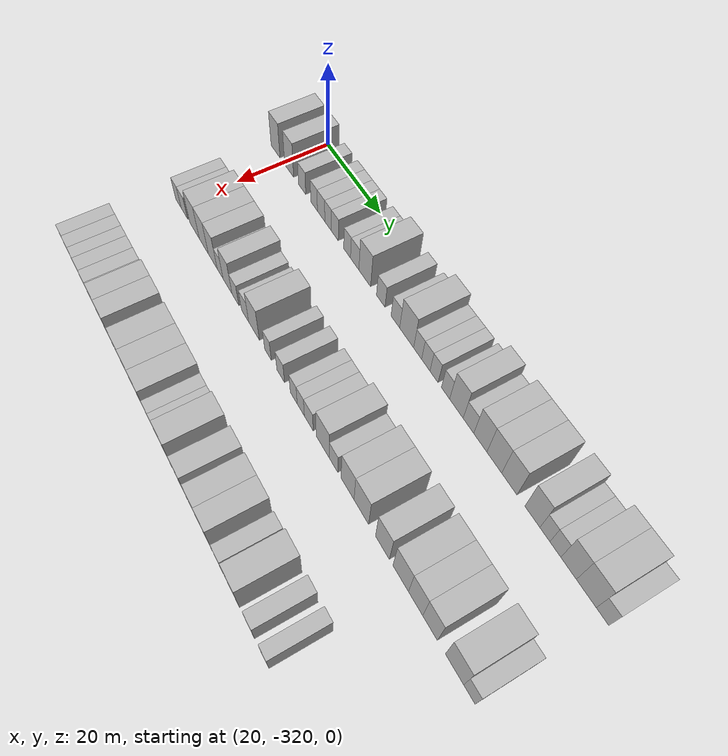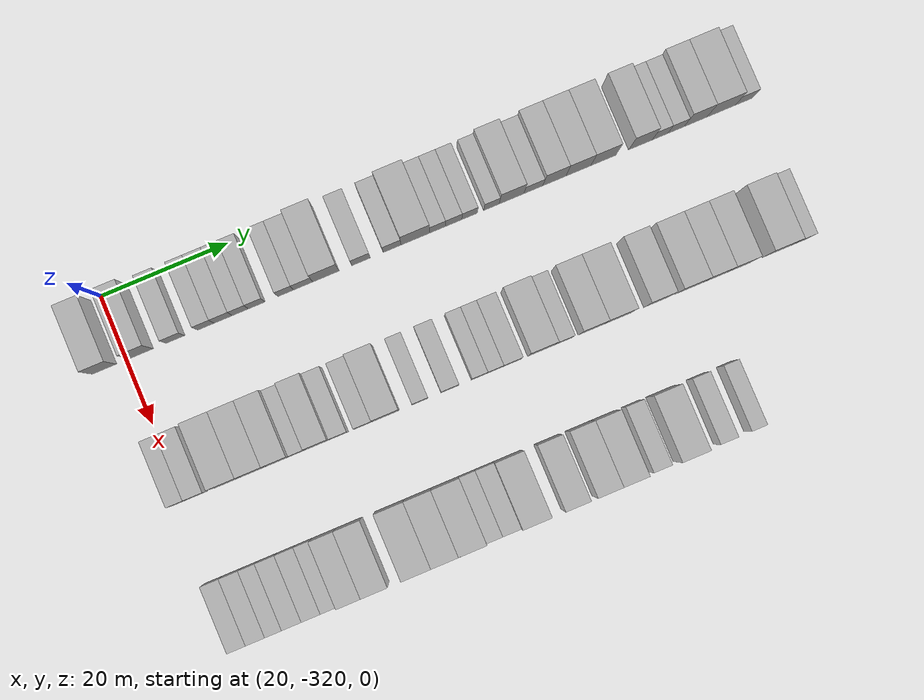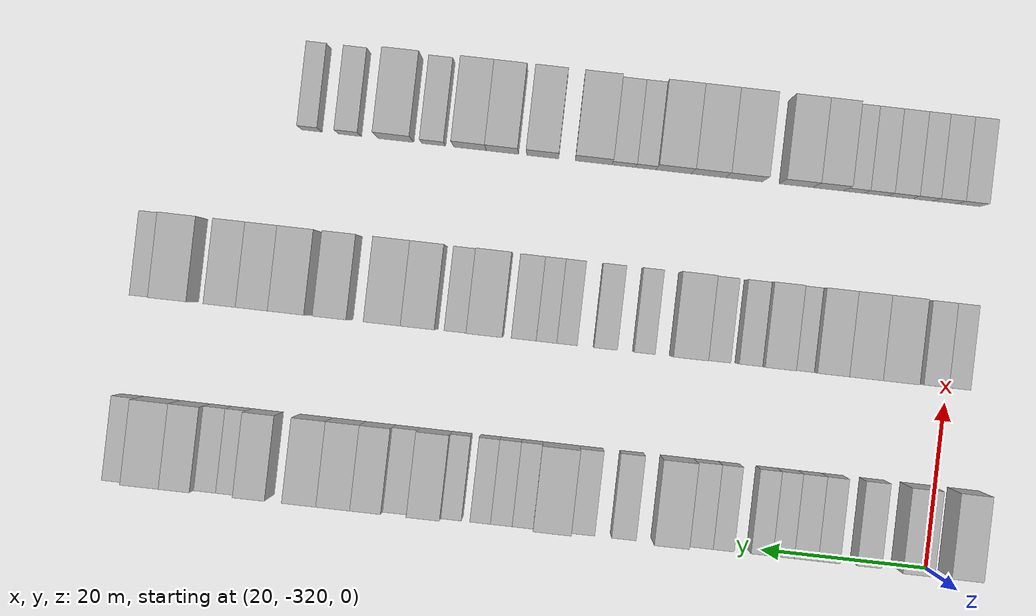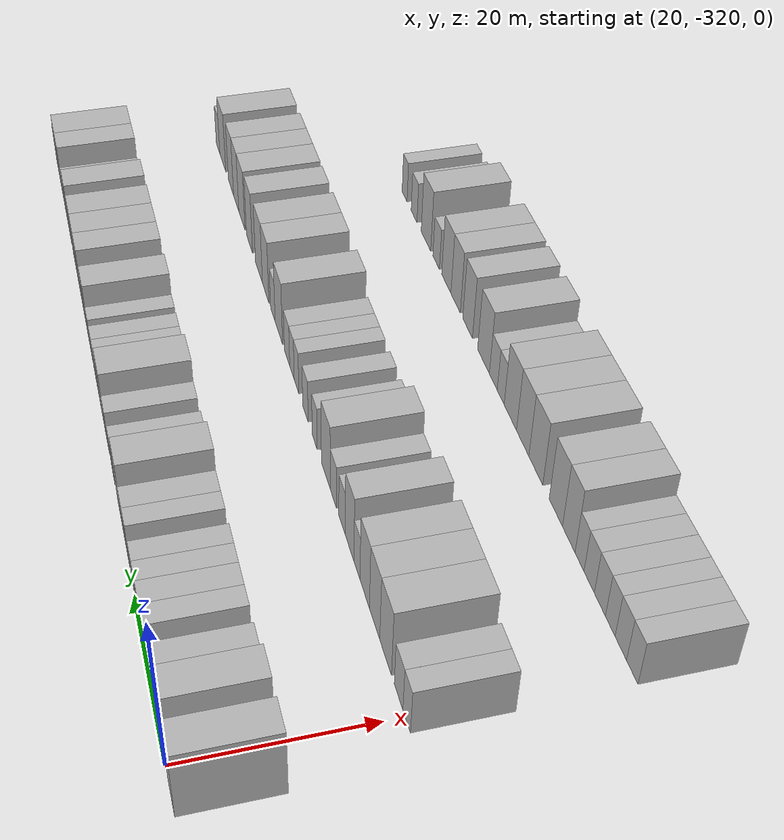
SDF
<sdf version="1.6">
 <world name="default">
  <model name="building_8">
   <static>1</static>
   <pose>25.0000 -323.3611 0 0.000000 0.000000 0.000000</pose>
   <link name="link">
    <pose>0 0 4.50 0 0 0</pose>
    <collision name="collision"><geometry><box><size>10.0000 3.7822 9.0000</size></box></geometry></collision>
    <visual name="visual">
     <cast_shadows>0</cast_shadows>
     <geometry><box><size>10.0000 3.7822 9.0000</size></box></geometry>
     <material>
      <script>
       <uri>model://HANNAS_wall/materials/scripts</uri>
       <uri>model://HANNAS_wall/materials/textures</uri>
       <name>vrc/HANNAS_wall</name>
      </script>
     </material>
    </visual>
   </link>
  </model>
  <model name="building_9">
   <static>1</static>
   <pose>25.0000 -317.6096 0 0.000000 0.000000 0.000000</pose>
   <link name="link">
    <pose>0 0 4.50 0 0 0</pose>
    <collision name="collision"><geometry><box><size>10.0000 3.7208 9.0000</size></box></geometry></collision>
    <visual name="visual">
     <cast_shadows>0</cast_shadows>
     <geometry><box><size>10.0000 3.7208 9.0000</size></box></geometry>
     <material>
      <script>
       <uri>model://HANNAS_wall/materials/scripts</uri>
       <uri>model://HANNAS_wall/materials/textures</uri>
       <name>vrc/HANNAS_wall</name>
      </script>
     </material>
    </visual>
   </link>
  </model>
  <model name="building_10">
   <static>1</static>
   <pose>25.0000 -312.2862 0 0.000000 0.000000 0.000000</pose>
   <link name="link">
    <pose>0 0 3.00 0 0 0</pose>
    <collision name="collision"><geometry><box><size>10.0000 2.9260 6.0000</size></box></geometry></collision>
    <visual name="visual">
     <cast_shadows>0</cast_shadows>
     <geometry><box><size>10.0000 2.9260 6.0000</size></box></geometry>
     <material>
      <script>
       <uri>model://HANNAS_wall/materials/scripts</uri>
       <uri>model://HANNAS_wall/materials/textures</uri>
       <name>vrc/HANNAS_wall</name>
      </script>
     </material>
    </visual>
   </link>
  </model>
  <model name="building_11">
   <static>1</static>
   <pose>25.0000 -307.5249 0 0.000000 0.000000 0.000000</pose>
   <link name="link">
    <pose>0 0 3.00 0 0 0</pose>
    <collision name="collision"><geometry><box><size>10.0000 2.5965 6.0000</size></box></geometry></collision>
    <visual name="visual">
     <cast_shadows>0</cast_shadows>
     <geometry><box><size>10.0000 2.5965 6.0000</size></box></geometry>
     <material>
      <script>
       <uri>model://HANNAS_wall/materials/scripts</uri>
       <uri>model://HANNAS_wall/materials/textures</uri>
       <name>vrc/HANNAS_wall</name>
      </script>
     </material>
    </visual>
   </link>
  </model>
  <model name="building_12">
   <static>1</static>
   <pose>25.0000 -304.8029 0 0.000000 0.000000 0.000000</pose>
   <link name="link">
    <pose>0 0 3.00 0 0 0</pose>
    <collision name="collision"><geometry><box><size>10.0000 2.8476 6.0000</size></box></geometry></collision>
    <visual name="visual">
     <cast_shadows>0</cast_shadows>
     <geometry><box><size>10.0000 2.8476 6.0000</size></box></geometry>
     <material>
      <script>
       <uri>model://HANNAS_wall/materials/scripts</uri>
       <uri>model://HANNAS_wall/materials/textures</uri>
       <name>vrc/HANNAS_wall</name>
      </script>
     </material>
    </visual>
   </link>
  </model>
  <model name="building_13">
   <static>1</static>
   <pose>25.0000 -302.1215 0 0.000000 0.000000 0.000000</pose>
   <link name="link">
    <pose>0 0 3.00 0 0 0</pose>
    <collision name="collision"><geometry><box><size>10.0000 2.5152 6.0000</size></box></geometry></collision>
    <visual name="visual">
     <cast_shadows>0</cast_shadows>
     <geometry><box><size>10.0000 2.5152 6.0000</size></box></geometry>
     <material>
      <script>
       <uri>model://HANNAS_wall/materials/scripts</uri>
       <uri>model://HANNAS_wall/materials/textures</uri>
       <name>vrc/HANNAS_wall</name>
      </script>
     </material>
    </visual>
   </link>
  </model>
  <model name="building_14">
   <static>1</static>
   <pose>25.0000 -299.5712 0 0.000000 0.000000 0.000000</pose>
   <link name="link">
    <pose>0 0 3.00 0 0 0</pose>
    <collision name="collision"><geometry><box><size>10.0000 2.5855 6.0000</size></box></geometry></collision>
    <visual name="visual">
     <cast_shadows>0</cast_shadows>
     <geometry><box><size>10.0000 2.5855 6.0000</size></box></geometry>
     <material>
      <script>
       <uri>model://HANNAS_wall/materials/scripts</uri>
       <uri>model://HANNAS_wall/materials/textures</uri>
       <name>vrc/HANNAS_wall</name>
      </script>
     </material>
    </visual>
   </link>
  </model>
  <model name="building_15">
   <static>1</static>
   <pose>25.0000 -295.0338 0 0.000000 0.000000 0.000000</pose>
   <link name="link">
    <pose>0 0 3.00 0 0 0</pose>
    <collision name="collision"><geometry><box><size>10.0000 2.4892 6.0000</size></box></geometry></collision>
    <visual name="visual">
     <cast_shadows>0</cast_shadows>
     <geometry><box><size>10.0000 2.4892 6.0000</size></box></geometry>
     <material>
      <script>
       <uri>model://HANNAS_wall/materials/scripts</uri>
       <uri>model://HANNAS_wall/materials/textures</uri>
       <name>vrc/HANNAS_wall</name>
      </script>
     </material>
    </visual>
   </link>
  </model>
  <model name="building_16">
   <static>1</static>
   <pose>25.0000 -292.2960 0 0.000000 0.000000 0.000000</pose>
   <link name="link">
    <pose>0 0 3.00 0 0 0</pose>
    <collision name="collision"><geometry><box><size>10.0000 2.9864 6.0000</size></box></geometry></collision>
    <visual name="visual">
     <cast_shadows>0</cast_shadows>
     <geometry><box><size>10.0000 2.9864 6.0000</size></box></geometry>
     <material>
      <script>
       <uri>model://HANNAS_wall/materials/scripts</uri>
       <uri>model://HANNAS_wall/materials/textures</uri>
       <name>vrc/HANNAS_wall</name>
      </script>
     </material>
    </visual>
   </link>
  </model>
  <model name="building_17">
   <static>1</static>
   <pose>25.0000 -288.7439 0 0.000000 0.000000 0.000000</pose>
   <link name="link">
    <pose>0 0 4.50 0 0 0</pose>
    <collision name="collision"><geometry><box><size>10.0000 4.1179 9.0000</size></box></geometry></collision>
    <visual name="visual">
     <cast_shadows>0</cast_shadows>
     <geometry><box><size>10.0000 4.1179 9.0000</size></box></geometry>
     <material>
      <script>
       <uri>model://HANNAS_wall/materials/scripts</uri>
       <uri>model://HANNAS_wall/materials/textures</uri>
       <name>vrc/HANNAS_wall</name>
      </script>
     </material>
    </visual>
   </link>
  </model>
  <model name="building_18">
   <static>1</static>
   <pose>25.0000 -283.2338 0 0.000000 0.000000 0.000000</pose>
   <link name="link">
    <pose>0 0 3.00 0 0 0</pose>
    <collision name="collision"><geometry><box><size>10.0000 2.9022 6.0000</size></box></geometry></collision>
    <visual name="visual">
     <cast_shadows>0</cast_shadows>
     <geometry><box><size>10.0000 2.9022 6.0000</size></box></geometry>
     <material>
      <script>
       <uri>model://HANNAS_wall/materials/scripts</uri>
       <uri>model://HANNAS_wall/materials/textures</uri>
       <name>vrc/HANNAS_wall</name>
      </script>
     </material>
    </visual>
   </link>
  </model>
  <model name="building_19">
   <static>1</static>
   <pose>25.0000 -278.3784 0 0.000000 0.000000 0.000000</pose>
   <link name="link">
    <pose>0 0 3.00 0 0 0</pose>
    <collision name="collision"><geometry><box><size>10.0000 2.8085 6.0000</size></box></geometry></collision>
    <visual name="visual">
     <cast_shadows>0</cast_shadows>
     <geometry><box><size>10.0000 2.8085 6.0000</size></box></geometry>
     <material>
      <script>
       <uri>model://HANNAS_wall/materials/scripts</uri>
       <uri>model://HANNAS_wall/materials/textures</uri>
       <name>vrc/HANNAS_wall</name>
      </script>
     </material>
    </visual>
   </link>
  </model>
  <model name="building_20">
   <static>1</static>
   <pose>25.0000 -274.7363 0 0.000000 0.000000 0.000000</pose>
   <link name="link">
    <pose>0 0 4.50 0 0 0</pose>
    <collision name="collision"><geometry><box><size>10.0000 4.4758 9.0000</size></box></geometry></collision>
    <visual name="visual">
     <cast_shadows>0</cast_shadows>
     <geometry><box><size>10.0000 4.4758 9.0000</size></box></geometry>
     <material>
      <script>
       <uri>model://HANNAS_wall/materials/scripts</uri>
       <uri>model://HANNAS_wall/materials/textures</uri>
       <name>vrc/HANNAS_wall</name>
      </script>
     </material>
    </visual>
   </link>
  </model>
  <model name="building_21">
   <static>1</static>
   <pose>25.0000 -271.2488 0 0.000000 0.000000 0.000000</pose>
   <link name="link">
    <pose>0 0 3.00 0 0 0</pose>
    <collision name="collision"><geometry><box><size>10.0000 2.4991 6.0000</size></box></geometry></collision>
    <visual name="visual">
     <cast_shadows>0</cast_shadows>
     <geometry><box><size>10.0000 2.4991 6.0000</size></box></geometry>
     <material>
      <script>
       <uri>model://HANNAS_wall/materials/scripts</uri>
       <uri>model://HANNAS_wall/materials/textures</uri>
       <name>vrc/HANNAS_wall</name>
      </script>
     </material>
    </visual>
   </link>
  </model>
  <model name="building_22">
   <static>1</static>
   <pose>25.0000 -268.7155 0 0.000000 0.000000 0.000000</pose>
   <link name="link">
    <pose>0 0 3.00 0 0 0</pose>
    <collision name="collision"><geometry><box><size>10.0000 2.5675 6.0000</size></box></geometry></collision>
    <visual name="visual">
     <cast_shadows>0</cast_shadows>
     <geometry><box><size>10.0000 2.5675 6.0000</size></box></geometry>
     <material>
      <script>
       <uri>model://HANNAS_wall/materials/scripts</uri>
       <uri>model://HANNAS_wall/materials/textures</uri>
       <name>vrc/HANNAS_wall</name>
      </script>
     </material>
    </visual>
   </link>
  </model>
  <model name="building_23">
   <static>1</static>
   <pose>25.0000 -266.2116 0 0.000000 0.000000 0.000000</pose>
   <link name="link">
    <pose>0 0 3.00 0 0 0</pose>
    <collision name="collision"><geometry><box><size>10.0000 2.4403 6.0000</size></box></geometry></collision>
    <visual name="visual">
     <cast_shadows>0</cast_shadows>
     <geometry><box><size>10.0000 2.4403 6.0000</size></box></geometry>
     <material>
      <script>
       <uri>model://HANNAS_wall/materials/scripts</uri>
       <uri>model://HANNAS_wall/materials/textures</uri>
       <name>vrc/HANNAS_wall</name>
      </script>
     </material>
    </visual>
   </link>
  </model>
  <model name="building_24">
   <static>1</static>
   <pose>25.0000 -262.7773 0 0.000000 0.000000 0.000000</pose>
   <link name="link">
    <pose>0 0 3.00 0 0 0</pose>
    <collision name="collision"><geometry><box><size>10.0000 2.4283 6.0000</size></box></geometry></collision>
    <visual name="visual">
     <cast_shadows>0</cast_shadows>
     <geometry><box><size>10.0000 2.4283 6.0000</size></box></geometry>
     <material>
      <script>
       <uri>model://HANNAS_wall/materials/scripts</uri>
       <uri>model://HANNAS_wall/materials/textures</uri>
       <name>vrc/HANNAS_wall</name>
      </script>
     </material>
    </visual>
   </link>
  </model>
  <model name="building_25">
   <static>1</static>
   <pose>25.0000 -259.6138 0 0.000000 0.000000 0.000000</pose>
   <link name="link">
    <pose>0 0 4.50 0 0 0</pose>
    <collision name="collision"><geometry><box><size>10.0000 3.8987 9.0000</size></box></geometry></collision>
    <visual name="visual">
     <cast_shadows>0</cast_shadows>
     <geometry><box><size>10.0000 3.8987 9.0000</size></box></geometry>
     <material>
      <script>
       <uri>model://HANNAS_wall/materials/scripts</uri>
       <uri>model://HANNAS_wall/materials/textures</uri>
       <name>vrc/HANNAS_wall</name>
      </script>
     </material>
    </visual>
   </link>
  </model>
  <model name="building_26">
   <static>1</static>
   <pose>25.0000 -256.1735 0 0.000000 0.000000 0.000000</pose>
   <link name="link">
    <pose>0 0 3.00 0 0 0</pose>
    <collision name="collision"><geometry><box><size>10.0000 2.9818 6.0000</size></box></geometry></collision>
    <visual name="visual">
     <cast_shadows>0</cast_shadows>
     <geometry><box><size>10.0000 2.9818 6.0000</size></box></geometry>
     <material>
      <script>
       <uri>model://HANNAS_wall/materials/scripts</uri>
       <uri>model://HANNAS_wall/materials/textures</uri>
       <name>vrc/HANNAS_wall</name>
      </script>
     </material>
    </visual>
   </link>
  </model>
  <model name="building_27">
   <static>1</static>
   <pose>25.0000 -252.8727 0 0.000000 0.000000 0.000000</pose>
   <link name="link">
    <pose>0 0 4.50 0 0 0</pose>
    <collision name="collision"><geometry><box><size>10.0000 3.6199 9.0000</size></box></geometry></collision>
    <visual name="visual">
     <cast_shadows>0</cast_shadows>
     <geometry><box><size>10.0000 3.6199 9.0000</size></box></geometry>
     <material>
      <script>
       <uri>model://HANNAS_wall/materials/scripts</uri>
       <uri>model://HANNAS_wall/materials/textures</uri>
       <name>vrc/HANNAS_wall</name>
      </script>
     </material>
    </visual>
   </link>
  </model>
  <model name="building_28">
   <static>1</static>
   <pose>25.0000 -249.0801 0 0.000000 0.000000 0.000000</pose>
   <link name="link">
    <pose>0 0 4.50 0 0 0</pose>
    <collision name="collision"><geometry><box><size>10.0000 3.9652 9.0000</size></box></geometry></collision>
    <visual name="visual">
     <cast_shadows>0</cast_shadows>
     <geometry><box><size>10.0000 3.9652 9.0000</size></box></geometry>
     <material>
      <script>
       <uri>model://HANNAS_wall/materials/scripts</uri>
       <uri>model://HANNAS_wall/materials/textures</uri>
       <name>vrc/HANNAS_wall</name>
      </script>
     </material>
    </visual>
   </link>
  </model>
  <model name="building_29">
   <static>1</static>
   <pose>25.0000 -245.0985 0 0.000000 0.000000 0.000000</pose>
   <link name="link">
    <pose>0 0 4.50 0 0 0</pose>
    <collision name="collision"><geometry><box><size>10.0000 3.9980 9.0000</size></box></geometry></collision>
    <visual name="visual">
     <cast_shadows>0</cast_shadows>
     <geometry><box><size>10.0000 3.9980 9.0000</size></box></geometry>
     <material>
      <script>
       <uri>model://HANNAS_wall/materials/scripts</uri>
       <uri>model://HANNAS_wall/materials/textures</uri>
       <name>vrc/HANNAS_wall</name>
      </script>
     </material>
    </visual>
   </link>
  </model>
  <model name="building_30">
   <static>1</static>
   <pose>25.0000 -239.2274 0 0.000000 0.000000 0.000000</pose>
   <link name="link">
    <pose>0 0 4.50 0 0 0</pose>
    <collision name="collision"><geometry><box><size>10.0000 3.7443 9.0000</size></box></geometry></collision>
    <visual name="visual">
     <cast_shadows>0</cast_shadows>
     <geometry><box><size>10.0000 3.7443 9.0000</size></box></geometry>
     <material>
      <script>
       <uri>model://HANNAS_wall/materials/scripts</uri>
       <uri>model://HANNAS_wall/materials/textures</uri>
       <name>vrc/HANNAS_wall</name>
      </script>
     </material>
    </visual>
   </link>
  </model>
  <model name="building_31">
   <static>1</static>
   <pose>25.0000 -236.1387 0 0.000000 0.000000 0.000000</pose>
   <link name="link">
    <pose>0 0 3.00 0 0 0</pose>
    <collision name="collision"><geometry><box><size>10.0000 2.4332 6.0000</size></box></geometry></collision>
    <visual name="visual">
     <cast_shadows>0</cast_shadows>
     <geometry><box><size>10.0000 2.4332 6.0000</size></box></geometry>
     <material>
      <script>
       <uri>model://HANNAS_wall/materials/scripts</uri>
       <uri>model://HANNAS_wall/materials/textures</uri>
       <name>vrc/HANNAS_wall</name>
      </script>
     </material>
    </visual>
   </link>
  </model>
  <model name="building_32">
   <static>1</static>
   <pose>25.0000 -233.6231 0 0.000000 0.000000 0.000000</pose>
   <link name="link">
    <pose>0 0 3.00 0 0 0</pose>
    <collision name="collision"><geometry><box><size>10.0000 2.5980 6.0000</size></box></geometry></collision>
    <visual name="visual">
     <cast_shadows>0</cast_shadows>
     <geometry><box><size>10.0000 2.5980 6.0000</size></box></geometry>
     <material>
      <script>
       <uri>model://HANNAS_wall/materials/scripts</uri>
       <uri>model://HANNAS_wall/materials/textures</uri>
       <name>vrc/HANNAS_wall</name>
      </script>
     </material>
    </visual>
   </link>
  </model>
  <model name="building_33">
   <static>1</static>
   <pose>25.0000 -230.5094 0 0.000000 0.000000 0.000000</pose>
   <link name="link">
    <pose>0 0 4.50 0 0 0</pose>
    <collision name="collision"><geometry><box><size>10.0000 3.6295 9.0000</size></box></geometry></collision>
    <visual name="visual">
     <cast_shadows>0</cast_shadows>
     <geometry><box><size>10.0000 3.6295 9.0000</size></box></geometry>
     <material>
      <script>
       <uri>model://HANNAS_wall/materials/scripts</uri>
       <uri>model://HANNAS_wall/materials/textures</uri>
       <name>vrc/HANNAS_wall</name>
      </script>
     </material>
    </visual>
   </link>
  </model>
  <model name="building_34">
   <static>1</static>
   <pose>25.0000 -226.4478 0 0.000000 0.000000 0.000000</pose>
   <link name="link">
    <pose>0 0 4.50 0 0 0</pose>
    <collision name="collision"><geometry><box><size>10.0000 4.4936 9.0000</size></box></geometry></collision>
    <visual name="visual">
     <cast_shadows>0</cast_shadows>
     <geometry><box><size>10.0000 4.4936 9.0000</size></box></geometry>
     <material>
      <script>
       <uri>model://HANNAS_wall/materials/scripts</uri>
       <uri>model://HANNAS_wall/materials/textures</uri>
       <name>vrc/HANNAS_wall</name>
      </script>
     </material>
    </visual>
   </link>
  </model>
  <model name="building_35">
   <static>1</static>
   <pose>25.0000 -222.8182 0 0.000000 0.000000 0.000000</pose>
   <link name="link">
    <pose>0 0 3.00 0 0 0</pose>
    <collision name="collision"><geometry><box><size>10.0000 2.7655 6.0000</size></box></geometry></collision>
    <visual name="visual">
     <cast_shadows>0</cast_shadows>
     <geometry><box><size>10.0000 2.7655 6.0000</size></box></geometry>
     <material>
      <script>
       <uri>model://HANNAS_wall/materials/scripts</uri>
       <uri>model://HANNAS_wall/materials/textures</uri>
       <name>vrc/HANNAS_wall</name>
      </script>
     </material>
    </visual>
   </link>
  </model>
  <model name="building_190">
   <static>1</static>
   <pose>47.0000 -320.4937 0 0.000000 0.000000 0.000000</pose>
   <link name="link">
    <pose>0 0 3.00 0 0 0</pose>
    <collision name="collision"><geometry><box><size>10.0000 2.5569 6.0000</size></box></geometry></collision>
    <visual name="visual">
     <cast_shadows>0</cast_shadows>
     <geometry><box><size>10.0000 2.5569 6.0000</size></box></geometry>
     <material>
      <script>
       <uri>model://HANNAS_wall/materials/scripts</uri>
       <uri>model://HANNAS_wall/materials/textures</uri>
       <name>vrc/HANNAS_wall</name>
      </script>
     </material>
    </visual>
   </link>
  </model>
  <model name="building_191">
   <static>1</static>
   <pose>47.0000 -317.7249 0 0.000000 0.000000 0.000000</pose>
   <link name="link">
    <pose>0 0 3.00 0 0 0</pose>
    <collision name="collision"><geometry><box><size>10.0000 2.9806 6.0000</size></box></geometry></collision>
    <visual name="visual">
     <cast_shadows>0</cast_shadows>
     <geometry><box><size>10.0000 2.9806 6.0000</size></box></geometry>
     <material>
      <script>
       <uri>model://HANNAS_wall/materials/scripts</uri>
       <uri>model://HANNAS_wall/materials/textures</uri>
       <name>vrc/HANNAS_wall</name>
      </script>
     </material>
    </visual>
   </link>
  </model>
  <model name="building_192">
   <static>1</static>
   <pose>47.0000 -313.0884 0 0.000000 0.000000 0.000000</pose>
   <link name="link">
    <pose>0 0 4.50 0 0 0</pose>
    <collision name="collision"><geometry><box><size>10.0000 4.2924 9.0000</size></box></geometry></collision>
    <visual name="visual">
     <cast_shadows>0</cast_shadows>
     <geometry><box><size>10.0000 4.2924 9.0000</size></box></geometry>
     <material>
      <script>
       <uri>model://HANNAS_wall/materials/scripts</uri>
       <uri>model://HANNAS_wall/materials/textures</uri>
       <name>vrc/HANNAS_wall</name>
      </script>
     </material>
    </visual>
   </link>
  </model>
  <model name="building_193">
   <static>1</static>
   <pose>47.0000 -308.9764 0 0.000000 0.000000 0.000000</pose>
   <link name="link">
    <pose>0 0 4.50 0 0 0</pose>
    <collision name="collision"><geometry><box><size>10.0000 3.9316 9.0000</size></box></geometry></collision>
    <visual name="visual">
     <cast_shadows>0</cast_shadows>
     <geometry><box><size>10.0000 3.9316 9.0000</size></box></geometry>
     <material>
      <script>
       <uri>model://HANNAS_wall/materials/scripts</uri>
       <uri>model://HANNAS_wall/materials/textures</uri>
       <name>vrc/HANNAS_wall</name>
      </script>
     </material>
    </visual>
   </link>
  </model>
  <model name="building_194">
   <static>1</static>
   <pose>47.0000 -305.1375 0 0.000000 0.000000 0.000000</pose>
   <link name="link">
    <pose>0 0 4.50 0 0 0</pose>
    <collision name="collision"><geometry><box><size>10.0000 3.7464 9.0000</size></box></geometry></collision>
    <visual name="visual">
     <cast_shadows>0</cast_shadows>
     <geometry><box><size>10.0000 3.7464 9.0000</size></box></geometry>
     <material>
      <script>
       <uri>model://HANNAS_wall/materials/scripts</uri>
       <uri>model://HANNAS_wall/materials/textures</uri>
       <name>vrc/HANNAS_wall</name>
      </script>
     </material>
    </visual>
   </link>
  </model>
  <model name="building_195">
   <static>1</static>
   <pose>47.0000 -302.0287 0 0.000000 0.000000 0.000000</pose>
   <link name="link">
    <pose>0 0 3.00 0 0 0</pose>
    <collision name="collision"><geometry><box><size>10.0000 2.4711 6.0000</size></box></geometry></collision>
    <visual name="visual">
     <cast_shadows>0</cast_shadows>
     <geometry><box><size>10.0000 2.4711 6.0000</size></box></geometry>
     <material>
      <script>
       <uri>model://HANNAS_wall/materials/scripts</uri>
       <uri>model://HANNAS_wall/materials/textures</uri>
       <name>vrc/HANNAS_wall</name>
      </script>
     </material>
    </visual>
   </link>
  </model>
  <model name="building_196">
   <static>1</static>
   <pose>47.0000 -298.9734 0 0.000000 0.000000 0.000000</pose>
   <link name="link">
    <pose>0 0 4.50 0 0 0</pose>
    <collision name="collision"><geometry><box><size>10.0000 3.6395 9.0000</size></box></geometry></collision>
    <visual name="visual">
     <cast_shadows>0</cast_shadows>
     <geometry><box><size>10.0000 3.6395 9.0000</size></box></geometry>
     <material>
      <script>
       <uri>model://HANNAS_wall/materials/scripts</uri>
       <uri>model://HANNAS_wall/materials/textures</uri>
       <name>vrc/HANNAS_wall</name>
      </script>
     </material>
    </visual>
   </link>
  </model>
  <model name="building_197">
   <static>1</static>
   <pose>47.0000 -295.7661 0 0.000000 0.000000 0.000000</pose>
   <link name="link">
    <pose>0 0 3.00 0 0 0</pose>
    <collision name="collision"><geometry><box><size>10.0000 2.7751 6.0000</size></box></geometry></collision>
    <visual name="visual">
     <cast_shadows>0</cast_shadows>
     <geometry><box><size>10.0000 2.7751 6.0000</size></box></geometry>
     <material>
      <script>
       <uri>model://HANNAS_wall/materials/scripts</uri>
       <uri>model://HANNAS_wall/materials/textures</uri>
       <name>vrc/HANNAS_wall</name>
      </script>
     </material>
    </visual>
   </link>
  </model>
  <model name="building_198">
   <static>1</static>
   <pose>47.0000 -291.9570 0 0.000000 0.000000 0.000000</pose>
   <link name="link">
    <pose>0 0 3.00 0 0 0</pose>
    <collision name="collision"><geometry><box><size>10.0000 2.8432 6.0000</size></box></geometry></collision>
    <visual name="visual">
     <cast_shadows>0</cast_shadows>
     <geometry><box><size>10.0000 2.8432 6.0000</size></box></geometry>
     <material>
      <script>
       <uri>model://HANNAS_wall/materials/scripts</uri>
       <uri>model://HANNAS_wall/materials/textures</uri>
       <name>vrc/HANNAS_wall</name>
      </script>
     </material>
    </visual>
   </link>
  </model>
  <model name="building_199">
   <static>1</static>
   <pose>47.0000 -288.4844 0 0.000000 0.000000 0.000000</pose>
   <link name="link">
    <pose>0 0 4.50 0 0 0</pose>
    <collision name="collision"><geometry><box><size>10.0000 4.1020 9.0000</size></box></geometry></collision>
    <visual name="visual">
     <cast_shadows>0</cast_shadows>
     <geometry><box><size>10.0000 4.1020 9.0000</size></box></geometry>
     <material>
      <script>
       <uri>model://HANNAS_wall/materials/scripts</uri>
       <uri>model://HANNAS_wall/materials/textures</uri>
       <name>vrc/HANNAS_wall</name>
      </script>
     </material>
    </visual>
   </link>
  </model>
  <model name="building_200">
   <static>1</static>
   <pose>47.0000 -283.2029 0 0.000000 0.000000 0.000000</pose>
   <link name="link">
    <pose>0 0 3.00 0 0 0</pose>
    <collision name="collision"><geometry><box><size>10.0000 2.4610 6.0000</size></box></geometry></collision>
    <visual name="visual">
     <cast_shadows>0</cast_shadows>
     <geometry><box><size>10.0000 2.4610 6.0000</size></box></geometry>
     <material>
      <script>
       <uri>model://HANNAS_wall/materials/scripts</uri>
       <uri>model://HANNAS_wall/materials/textures</uri>
       <name>vrc/HANNAS_wall</name>
      </script>
     </material>
    </visual>
   </link>
  </model>
  <model name="building_201">
   <static>1</static>
   <pose>47.0000 -278.5942 0 0.000000 0.000000 0.000000</pose>
   <link name="link">
    <pose>0 0 3.00 0 0 0</pose>
    <collision name="collision"><geometry><box><size>10.0000 2.7563 6.0000</size></box></geometry></collision>
    <visual name="visual">
     <cast_shadows>0</cast_shadows>
     <geometry><box><size>10.0000 2.7563 6.0000</size></box></geometry>
     <material>
      <script>
       <uri>model://HANNAS_wall/materials/scripts</uri>
       <uri>model://HANNAS_wall/materials/textures</uri>
       <name>vrc/HANNAS_wall</name>
      </script>
     </material>
    </visual>
   </link>
  </model>
  <model name="building_202">
   <static>1</static>
   <pose>47.0000 -274.0071 0 0.000000 0.000000 0.000000</pose>
   <link name="link">
    <pose>0 0 3.00 0 0 0</pose>
    <collision name="collision"><geometry><box><size>10.0000 2.4179 6.0000</size></box></geometry></collision>
    <visual name="visual">
     <cast_shadows>0</cast_shadows>
     <geometry><box><size>10.0000 2.4179 6.0000</size></box></geometry>
     <material>
      <script>
       <uri>model://HANNAS_wall/materials/scripts</uri>
       <uri>model://HANNAS_wall/materials/textures</uri>
       <name>vrc/HANNAS_wall</name>
      </script>
     </material>
    </visual>
   </link>
  </model>
  <model name="building_203">
   <static>1</static>
   <pose>47.0000 -271.5770 0 0.000000 0.000000 0.000000</pose>
   <link name="link">
    <pose>0 0 3.00 0 0 0</pose>
    <collision name="collision"><geometry><box><size>10.0000 2.4423 6.0000</size></box></geometry></collision>
    <visual name="visual">
     <cast_shadows>0</cast_shadows>
     <geometry><box><size>10.0000 2.4423 6.0000</size></box></geometry>
     <material>
      <script>
       <uri>model://HANNAS_wall/materials/scripts</uri>
       <uri>model://HANNAS_wall/materials/textures</uri>
       <name>vrc/HANNAS_wall</name>
      </script>
     </material>
    </visual>
   </link>
  </model>
  <model name="building_204">
   <static>1</static>
   <pose>47.0000 -268.8753 0 0.000000 0.000000 0.000000</pose>
   <link name="link">
    <pose>0 0 3.00 0 0 0</pose>
    <collision name="collision"><geometry><box><size>10.0000 2.9610 6.0000</size></box></geometry></collision>
    <visual name="visual">
     <cast_shadows>0</cast_shadows>
     <geometry><box><size>10.0000 2.9610 6.0000</size></box></geometry>
     <material>
      <script>
       <uri>model://HANNAS_wall/materials/scripts</uri>
       <uri>model://HANNAS_wall/materials/textures</uri>
       <name>vrc/HANNAS_wall</name>
      </script>
     </material>
    </visual>
   </link>
  </model>
  <model name="building_205">
   <static>1</static>
   <pose>47.0000 -264.2802 0 0.000000 0.000000 0.000000</pose>
   <link name="link">
    <pose>0 0 4.50 0 0 0</pose>
    <collision name="collision"><geometry><box><size>10.0000 4.2292 9.0000</size></box></geometry></collision>
    <visual name="visual">
     <cast_shadows>0</cast_shadows>
     <geometry><box><size>10.0000 4.2292 9.0000</size></box></geometry>
     <material>
      <script>
       <uri>model://HANNAS_wall/materials/scripts</uri>
       <uri>model://HANNAS_wall/materials/textures</uri>
       <name>vrc/HANNAS_wall</name>
      </script>
     </material>
    </visual>
   </link>
  </model>
  <model name="building_206">
   <static>1</static>
   <pose>47.0000 -260.8108 0 0.000000 0.000000 0.000000</pose>
   <link name="link">
    <pose>0 0 3.00 0 0 0</pose>
    <collision name="collision"><geometry><box><size>10.0000 2.7098 6.0000</size></box></geometry></collision>
    <visual name="visual">
     <cast_shadows>0</cast_shadows>
     <geometry><box><size>10.0000 2.7098 6.0000</size></box></geometry>
     <material>
      <script>
       <uri>model://HANNAS_wall/materials/scripts</uri>
       <uri>model://HANNAS_wall/materials/textures</uri>
       <name>vrc/HANNAS_wall</name>
      </script>
     </material>
    </visual>
   </link>
  </model>
  <model name="building_207">
   <static>1</static>
   <pose>47.0000 -256.4680 0 0.000000 0.000000 0.000000</pose>
   <link name="link">
    <pose>0 0 4.50 0 0 0</pose>
    <collision name="collision"><geometry><box><size>10.0000 3.9757 9.0000</size></box></geometry></collision>
    <visual name="visual">
     <cast_shadows>0</cast_shadows>
     <geometry><box><size>10.0000 3.9757 9.0000</size></box></geometry>
     <material>
      <script>
       <uri>model://HANNAS_wall/materials/scripts</uri>
       <uri>model://HANNAS_wall/materials/textures</uri>
       <name>vrc/HANNAS_wall</name>
      </script>
     </material>
    </visual>
   </link>
  </model>
  <model name="building_208">
   <static>1</static>
   <pose>47.0000 -252.3150 0 0.000000 0.000000 0.000000</pose>
   <link name="link">
    <pose>0 0 4.50 0 0 0</pose>
    <collision name="collision"><geometry><box><size>10.0000 4.3302 9.0000</size></box></geometry></collision>
    <visual name="visual">
     <cast_shadows>0</cast_shadows>
     <geometry><box><size>10.0000 4.3302 9.0000</size></box></geometry>
     <material>
      <script>
       <uri>model://HANNAS_wall/materials/scripts</uri>
       <uri>model://HANNAS_wall/materials/textures</uri>
       <name>vrc/HANNAS_wall</name>
      </script>
     </material>
    </visual>
   </link>
  </model>
  <model name="building_209">
   <static>1</static>
   <pose>47.0000 -246.1784 0 0.000000 0.000000 0.000000</pose>
   <link name="link">
    <pose>0 0 4.50 0 0 0</pose>
    <collision name="collision"><geometry><box><size>10.0000 3.9431 9.0000</size></box></geometry></collision>
    <visual name="visual">
     <cast_shadows>0</cast_shadows>
     <geometry><box><size>10.0000 3.9431 9.0000</size></box></geometry>
     <material>
      <script>
       <uri>model://HANNAS_wall/materials/scripts</uri>
       <uri>model://HANNAS_wall/materials/textures</uri>
       <name>vrc/HANNAS_wall</name>
      </script>
     </material>
    </visual>
   </link>
  </model>
  <model name="building_210">
   <static>1</static>
   <pose>47.0000 -241.0814 0 0.000000 0.000000 0.000000</pose>
   <link name="link">
    <pose>0 0 4.50 0 0 0</pose>
    <collision name="collision"><geometry><box><size>10.0000 4.2509 9.0000</size></box></geometry></collision>
    <visual name="visual">
     <cast_shadows>0</cast_shadows>
     <geometry><box><size>10.0000 4.2509 9.0000</size></box></geometry>
     <material>
      <script>
       <uri>model://HANNAS_wall/materials/scripts</uri>
       <uri>model://HANNAS_wall/materials/textures</uri>
       <name>vrc/HANNAS_wall</name>
      </script>
     </material>
    </visual>
   </link>
  </model>
  <model name="building_211">
   <static>1</static>
   <pose>47.0000 -237.0806 0 0.000000 0.000000 0.000000</pose>
   <link name="link">
    <pose>0 0 4.50 0 0 0</pose>
    <collision name="collision"><geometry><box><size>10.0000 3.7507 9.0000</size></box></geometry></collision>
    <visual name="visual">
     <cast_shadows>0</cast_shadows>
     <geometry><box><size>10.0000 3.7507 9.0000</size></box></geometry>
     <material>
      <script>
       <uri>model://HANNAS_wall/materials/scripts</uri>
       <uri>model://HANNAS_wall/materials/textures</uri>
       <name>vrc/HANNAS_wall</name>
      </script>
     </material>
    </visual>
   </link>
  </model>
  <model name="building_212">
   <static>1</static>
   <pose>47.0000 -233.3234 0 0.000000 0.000000 0.000000</pose>
   <link name="link">
    <pose>0 0 4.50 0 0 0</pose>
    <collision name="collision"><geometry><box><size>10.0000 3.7638 9.0000</size></box></geometry></collision>
    <visual name="visual">
     <cast_shadows>0</cast_shadows>
     <geometry><box><size>10.0000 3.7638 9.0000</size></box></geometry>
     <material>
      <script>
       <uri>model://HANNAS_wall/materials/scripts</uri>
       <uri>model://HANNAS_wall/materials/textures</uri>
       <name>vrc/HANNAS_wall</name>
      </script>
     </material>
    </visual>
   </link>
  </model>
  <model name="building_213">
   <static>1</static>
   <pose>47.0000 -227.1951 0 0.000000 0.000000 0.000000</pose>
   <link name="link">
    <pose>0 0 4.50 0 0 0</pose>
    <collision name="collision"><geometry><box><size>10.0000 4.4927 9.0000</size></box></geometry></collision>
    <visual name="visual">
     <cast_shadows>0</cast_shadows>
     <geometry><box><size>10.0000 4.4927 9.0000</size></box></geometry>
     <material>
      <script>
       <uri>model://HANNAS_wall/materials/scripts</uri>
       <uri>model://HANNAS_wall/materials/textures</uri>
       <name>vrc/HANNAS_wall</name>
      </script>
     </material>
    </visual>
   </link>
  </model>
  <model name="building_214">
   <static>1</static>
   <pose>47.0000 -223.5850 0 0.000000 0.000000 0.000000</pose>
   <link name="link">
    <pose>0 0 3.00 0 0 0</pose>
    <collision name="collision"><geometry><box><size>10.0000 2.7274 6.0000</size></box></geometry></collision>
    <visual name="visual">
     <cast_shadows>0</cast_shadows>
     <geometry><box><size>10.0000 2.7274 6.0000</size></box></geometry>
     <material>
      <script>
       <uri>model://HANNAS_wall/materials/scripts</uri>
       <uri>model://HANNAS_wall/materials/textures</uri>
       <name>vrc/HANNAS_wall</name>
      </script>
     </material>
    </visual>
   </link>
  </model>
  <model name="building_375">
   <static>1</static>
   <pose>69.0000 -320.1553 0 0.000000 0.000000 0.000000</pose>
   <link name="link">
    <pose>0 0 3.00 0 0 0</pose>
    <collision name="collision"><geometry><box><size>10.0000 2.8236 6.0000</size></box></geometry></collision>
    <visual name="visual">
     <cast_shadows>0</cast_shadows>
     <geometry><box><size>10.0000 2.8236 6.0000</size></box></geometry>
     <material>
      <script>
       <uri>model://HANNAS_wall/materials/scripts</uri>
       <uri>model://HANNAS_wall/materials/textures</uri>
       <name>vrc/HANNAS_wall</name>
      </script>
     </material>
    </visual>
   </link>
  </model>
  <model name="building_376">
   <static>1</static>
   <pose>69.0000 -317.2899 0 0.000000 0.000000 0.000000</pose>
   <link name="link">
    <pose>0 0 3.00 0 0 0</pose>
    <collision name="collision"><geometry><box><size>10.0000 2.9072 6.0000</size></box></geometry></collision>
    <visual name="visual">
     <cast_shadows>0</cast_shadows>
     <geometry><box><size>10.0000 2.9072 6.0000</size></box></geometry>
     <material>
      <script>
       <uri>model://HANNAS_wall/materials/scripts</uri>
       <uri>model://HANNAS_wall/materials/textures</uri>
       <name>vrc/HANNAS_wall</name>
      </script>
     </material>
    </visual>
   </link>
  </model>
  <model name="building_377">
   <static>1</static>
   <pose>69.0000 -314.5703 0 0.000000 0.000000 0.000000</pose>
   <link name="link">
    <pose>0 0 3.00 0 0 0</pose>
    <collision name="collision"><geometry><box><size>10.0000 2.5318 6.0000</size></box></geometry></collision>
    <visual name="visual">
     <cast_shadows>0</cast_shadows>
     <geometry><box><size>10.0000 2.5318 6.0000</size></box></geometry>
     <material>
      <script>
       <uri>model://HANNAS_wall/materials/scripts</uri>
       <uri>model://HANNAS_wall/materials/textures</uri>
       <name>vrc/HANNAS_wall</name>
      </script>
     </material>
    </visual>
   </link>
  </model>
  <model name="building_378">
   <static>1</static>
   <pose>69.0000 -311.8193 0 0.000000 0.000000 0.000000</pose>
   <link name="link">
    <pose>0 0 3.00 0 0 0</pose>
    <collision name="collision"><geometry><box><size>10.0000 2.9702 6.0000</size></box></geometry></collision>
    <visual name="visual">
     <cast_shadows>0</cast_shadows>
     <geometry><box><size>10.0000 2.9702 6.0000</size></box></geometry>
     <material>
      <script>
       <uri>model://HANNAS_wall/materials/scripts</uri>
       <uri>model://HANNAS_wall/materials/textures</uri>
       <name>vrc/HANNAS_wall</name>
      </script>
     </material>
    </visual>
   </link>
  </model>
  <model name="building_379">
   <static>1</static>
   <pose>69.0000 -308.9057 0 0.000000 0.000000 0.000000</pose>
   <link name="link">
    <pose>0 0 3.00 0 0 0</pose>
    <collision name="collision"><geometry><box><size>10.0000 2.8569 6.0000</size></box></geometry></collision>
    <visual name="visual">
     <cast_shadows>0</cast_shadows>
     <geometry><box><size>10.0000 2.8569 6.0000</size></box></geometry>
     <material>
      <script>
       <uri>model://HANNAS_wall/materials/scripts</uri>
       <uri>model://HANNAS_wall/materials/textures</uri>
       <name>vrc/HANNAS_wall</name>
      </script>
     </material>
    </visual>
   </link>
  </model>
  <model name="building_380">
   <static>1</static>
   <pose>69.0000 -306.2109 0 0.000000 0.000000 0.000000</pose>
   <link name="link">
    <pose>0 0 3.00 0 0 0</pose>
    <collision name="collision"><geometry><box><size>10.0000 2.5328 6.0000</size></box></geometry></collision>
    <visual name="visual">
     <cast_shadows>0</cast_shadows>
     <geometry><box><size>10.0000 2.5328 6.0000</size></box></geometry>
     <material>
      <script>
       <uri>model://HANNAS_wall/materials/scripts</uri>
       <uri>model://HANNAS_wall/materials/textures</uri>
       <name>vrc/HANNAS_wall</name>
      </script>
     </material>
    </visual>
   </link>
  </model>
  <model name="building_381">
   <static>1</static>
   <pose>69.0000 -303.1090 0 0.000000 0.000000 0.000000</pose>
   <link name="link">
    <pose>0 0 4.50 0 0 0</pose>
    <collision name="collision"><geometry><box><size>10.0000 3.6709 9.0000</size></box></geometry></collision>
    <visual name="visual">
     <cast_shadows>0</cast_shadows>
     <geometry><box><size>10.0000 3.6709 9.0000</size></box></geometry>
     <material>
      <script>
       <uri>model://HANNAS_wall/materials/scripts</uri>
       <uri>model://HANNAS_wall/materials/textures</uri>
       <name>vrc/HANNAS_wall</name>
      </script>
     </material>
    </visual>
   </link>
  </model>
  <model name="building_382">
   <static>1</static>
   <pose>69.0000 -299.2582 0 0.000000 0.000000 0.000000</pose>
   <link name="link">
    <pose>0 0 4.50 0 0 0</pose>
    <collision name="collision"><geometry><box><size>10.0000 4.0306 9.0000</size></box></geometry></collision>
    <visual name="visual">
     <cast_shadows>0</cast_shadows>
     <geometry><box><size>10.0000 4.0306 9.0000</size></box></geometry>
     <material>
      <script>
       <uri>model://HANNAS_wall/materials/scripts</uri>
       <uri>model://HANNAS_wall/materials/textures</uri>
       <name>vrc/HANNAS_wall</name>
      </script>
     </material>
    </visual>
   </link>
  </model>
  <model name="building_383">
   <static>1</static>
   <pose>69.0000 -293.0047 0 0.000000 0.000000 0.000000</pose>
   <link name="link">
    <pose>0 0 4.50 0 0 0</pose>
    <collision name="collision"><geometry><box><size>10.0000 4.4765 9.0000</size></box></geometry></collision>
    <visual name="visual">
     <cast_shadows>0</cast_shadows>
     <geometry><box><size>10.0000 4.4765 9.0000</size></box></geometry>
     <material>
      <script>
       <uri>model://HANNAS_wall/materials/scripts</uri>
       <uri>model://HANNAS_wall/materials/textures</uri>
       <name>vrc/HANNAS_wall</name>
      </script>
     </material>
    </visual>
   </link>
  </model>
  <model name="building_384">
   <static>1</static>
   <pose>69.0000 -288.6971 0 0.000000 0.000000 0.000000</pose>
   <link name="link">
    <pose>0 0 4.50 0 0 0</pose>
    <collision name="collision"><geometry><box><size>10.0000 4.1387 9.0000</size></box></geometry></collision>
    <visual name="visual">
     <cast_shadows>0</cast_shadows>
     <geometry><box><size>10.0000 4.1387 9.0000</size></box></geometry>
     <material>
      <script>
       <uri>model://HANNAS_wall/materials/scripts</uri>
       <uri>model://HANNAS_wall/materials/textures</uri>
       <name>vrc/HANNAS_wall</name>
      </script>
     </material>
    </visual>
   </link>
  </model>
  <model name="building_385">
   <static>1</static>
   <pose>69.0000 -284.4859 0 0.000000 0.000000 0.000000</pose>
   <link name="link">
    <pose>0 0 4.50 0 0 0</pose>
    <collision name="collision"><geometry><box><size>10.0000 4.2837 9.0000</size></box></geometry></collision>
    <visual name="visual">
     <cast_shadows>0</cast_shadows>
     <geometry><box><size>10.0000 4.2837 9.0000</size></box></geometry>
     <material>
      <script>
       <uri>model://HANNAS_wall/materials/scripts</uri>
       <uri>model://HANNAS_wall/materials/textures</uri>
       <name>vrc/HANNAS_wall</name>
      </script>
     </material>
    </visual>
   </link>
  </model>
  <model name="building_386">
   <static>1</static>
   <pose>69.0000 -281.1047 0 0.000000 0.000000 0.000000</pose>
   <link name="link">
    <pose>0 0 3.00 0 0 0</pose>
    <collision name="collision"><geometry><box><size>10.0000 2.4787 6.0000</size></box></geometry></collision>
    <visual name="visual">
     <cast_shadows>0</cast_shadows>
     <geometry><box><size>10.0000 2.4787 6.0000</size></box></geometry>
     <material>
      <script>
       <uri>model://HANNAS_wall/materials/scripts</uri>
       <uri>model://HANNAS_wall/materials/textures</uri>
       <name>vrc/HANNAS_wall</name>
      </script>
     </material>
    </visual>
   </link>
  </model>
  <model name="building_387">
   <static>1</static>
   <pose>69.0000 -278.4294 0 0.000000 0.000000 0.000000</pose>
   <link name="link">
    <pose>0 0 3.00 0 0 0</pose>
    <collision name="collision"><geometry><box><size>10.0000 2.8720 6.0000</size></box></geometry></collision>
    <visual name="visual">
     <cast_shadows>0</cast_shadows>
     <geometry><box><size>10.0000 2.8720 6.0000</size></box></geometry>
     <material>
      <script>
       <uri>model://HANNAS_wall/materials/scripts</uri>
       <uri>model://HANNAS_wall/materials/textures</uri>
       <name>vrc/HANNAS_wall</name>
      </script>
     </material>
    </visual>
   </link>
  </model>
  <model name="building_388">
   <static>1</static>
   <pose>69.0000 -274.7796 0 0.000000 0.000000 0.000000</pose>
   <link name="link">
    <pose>0 0 4.50 0 0 0</pose>
    <collision name="collision"><geometry><box><size>10.0000 4.4275 9.0000</size></box></geometry></collision>
    <visual name="visual">
     <cast_shadows>0</cast_shadows>
     <geometry><box><size>10.0000 4.4275 9.0000</size></box></geometry>
     <material>
      <script>
       <uri>model://HANNAS_wall/materials/scripts</uri>
       <uri>model://HANNAS_wall/materials/textures</uri>
       <name>vrc/HANNAS_wall</name>
      </script>
     </material>
    </visual>
   </link>
  </model>
  <model name="building_389">
   <static>1</static>
   <pose>69.0000 -268.6392 0 0.000000 0.000000 0.000000</pose>
   <link name="link">
    <pose>0 0 4.50 0 0 0</pose>
    <collision name="collision"><geometry><box><size>10.0000 3.8532 9.0000</size></box></geometry></collision>
    <visual name="visual">
     <cast_shadows>0</cast_shadows>
     <geometry><box><size>10.0000 3.8532 9.0000</size></box></geometry>
     <material>
      <script>
       <uri>model://HANNAS_wall/materials/scripts</uri>
       <uri>model://HANNAS_wall/materials/textures</uri>
       <name>vrc/HANNAS_wall</name>
      </script>
     </material>
    </visual>
   </link>
  </model>
  <model name="building_390">
   <static>1</static>
   <pose>69.0000 -263.7725 0 0.000000 0.000000 0.000000</pose>
   <link name="link">
    <pose>0 0 4.50 0 0 0</pose>
    <collision name="collision"><geometry><box><size>10.0000 3.8802 9.0000</size></box></geometry></collision>
    <visual name="visual">
     <cast_shadows>0</cast_shadows>
     <geometry><box><size>10.0000 3.8802 9.0000</size></box></geometry>
     <material>
      <script>
       <uri>model://HANNAS_wall/materials/scripts</uri>
       <uri>model://HANNAS_wall/materials/textures</uri>
       <name>vrc/HANNAS_wall</name>
      </script>
     </material>
    </visual>
   </link>
  </model>
  <model name="building_391">
   <static>1</static>
   <pose>69.0000 -259.8614 0 0.000000 0.000000 0.000000</pose>
   <link name="link">
    <pose>0 0 4.50 0 0 0</pose>
    <collision name="collision"><geometry><box><size>10.0000 3.9419 9.0000</size></box></geometry></collision>
    <visual name="visual">
     <cast_shadows>0</cast_shadows>
     <geometry><box><size>10.0000 3.9419 9.0000</size></box></geometry>
     <material>
      <script>
       <uri>model://HANNAS_wall/materials/scripts</uri>
       <uri>model://HANNAS_wall/materials/textures</uri>
       <name>vrc/HANNAS_wall</name>
      </script>
     </material>
    </visual>
   </link>
  </model>
  <model name="building_392">
   <static>1</static>
   <pose>69.0000 -255.4599 0 0.000000 0.000000 0.000000</pose>
   <link name="link">
    <pose>0 0 3.00 0 0 0</pose>
    <collision name="collision"><geometry><box><size>10.0000 2.8612 6.0000</size></box></geometry></collision>
    <visual name="visual">
     <cast_shadows>0</cast_shadows>
     <geometry><box><size>10.0000 2.8612 6.0000</size></box></geometry>
     <material>
      <script>
       <uri>model://HANNAS_wall/materials/scripts</uri>
       <uri>model://HANNAS_wall/materials/textures</uri>
       <name>vrc/HANNAS_wall</name>
      </script>
     </material>
    </visual>
   </link>
  </model>
  <model name="building_393">
   <static>1</static>
   <pose>69.0000 -250.8627 0 0.000000 0.000000 0.000000</pose>
   <link name="link">
    <pose>0 0 4.50 0 0 0</pose>
    <collision name="collision"><geometry><box><size>10.0000 4.3331 9.0000</size></box></geometry></collision>
    <visual name="visual">
     <cast_shadows>0</cast_shadows>
     <geometry><box><size>10.0000 4.3331 9.0000</size></box></geometry>
     <material>
      <script>
       <uri>model://HANNAS_wall/materials/scripts</uri>
       <uri>model://HANNAS_wall/materials/textures</uri>
       <name>vrc/HANNAS_wall</name>
      </script>
     </material>
    </visual>
   </link>
  </model>
  <model name="building_394">
   <static>1</static>
   <pose>69.0000 -245.3121 0 0.000000 0.000000 0.000000</pose>
   <link name="link">
    <pose>0 0 3.00 0 0 0</pose>
    <collision name="collision"><geometry><box><size>10.0000 2.7682 6.0000</size></box></geometry></collision>
    <visual name="visual">
     <cast_shadows>0</cast_shadows>
     <geometry><box><size>10.0000 2.7682 6.0000</size></box></geometry>
     <material>
      <script>
       <uri>model://HANNAS_wall/materials/scripts</uri>
       <uri>model://HANNAS_wall/materials/textures</uri>
       <name>vrc/HANNAS_wall</name>
      </script>
     </material>
    </visual>
   </link>
  </model>
  <model name="building_395">
   <static>1</static>
   <pose>69.0000 -240.7276 0 0.000000 0.000000 0.000000</pose>
   <link name="link">
    <pose>0 0 3.00 0 0 0</pose>
    <collision name="collision"><geometry><box><size>10.0000 2.4008 6.0000</size></box></geometry></collision>
    <visual name="visual">
     <cast_shadows>0</cast_shadows>
     <geometry><box><size>10.0000 2.4008 6.0000</size></box></geometry>
     <material>
      <script>
       <uri>model://HANNAS_wall/materials/scripts</uri>
       <uri>model://HANNAS_wall/materials/textures</uri>
       <name>vrc/HANNAS_wall</name>
      </script>
     </material>
    </visual>
   </link>
  </model>
 </world>
</sdf>
